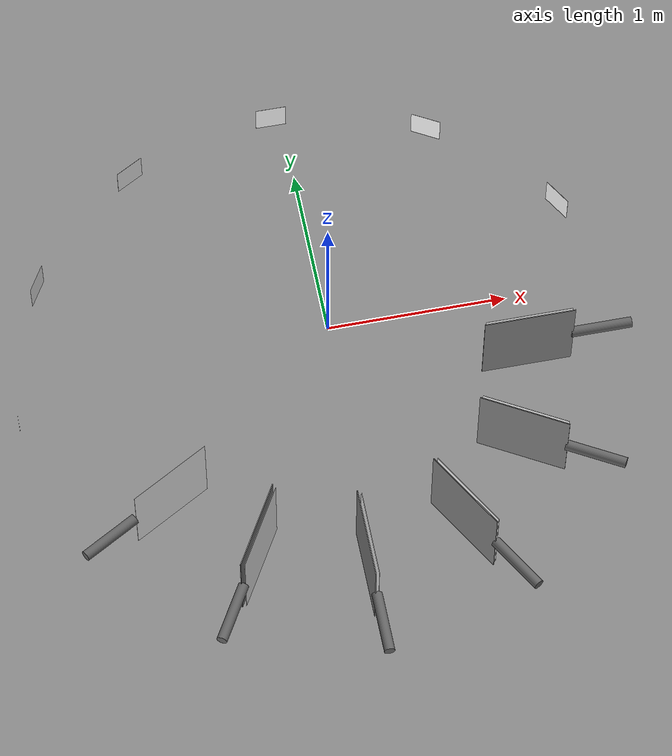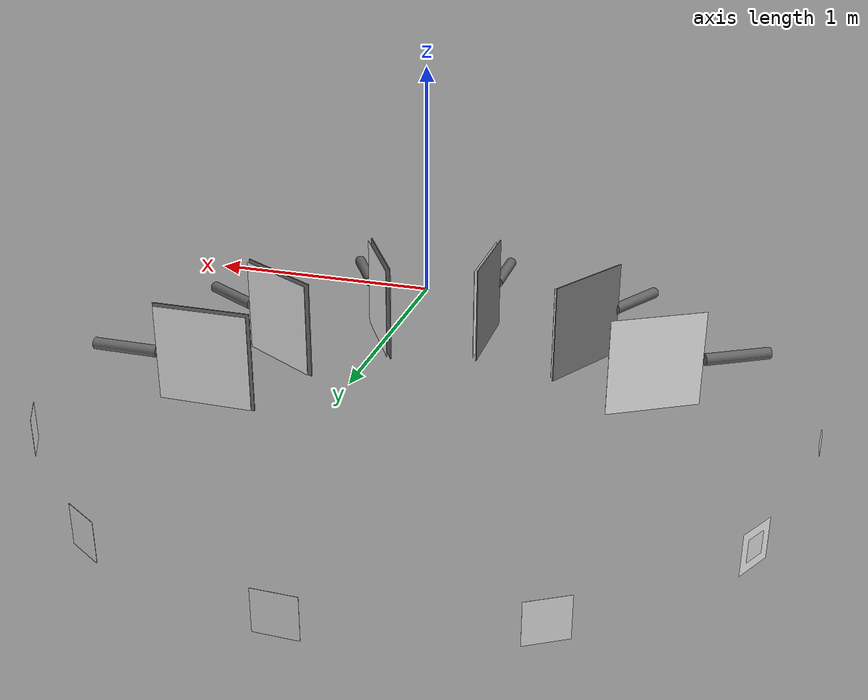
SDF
<?xml version="1.0"?>

<sdf version="1.6">
  <world name="default">

    <include>
      <uri>model://sun</uri>
    </include>

    <model name="marker0">
      <include>
        <static>true</static>
        <uri>model://marker_0</uri>
      </include>
      <pose>1.755 0.0 -0.5 0 -1.5707963267948966 0</pose>
    </model>
    <model name="marker1">
      <include>
        <static>true</static>
        <uri>model://marker_1</uri>
      </include>
      <pose>1.5198745836416898 -0.8774999999999998 -0.5 -0.5235987755982988 -1.5707963267948966 0</pose>
    </model>
    <model name="marker2">
      <include>
        <static>true</static>
        <uri>model://marker_2</uri>
      </include>
      <pose>0.8775000000000002 -1.5198745836416896 -0.5 -1.0471975511965976 -1.5707963267948966 0</pose>
    </model>
    <model name="marker3">
      <include>
        <static>true</static>
        <uri>model://marker_3</uri>
      </include>
      <pose>1.0746275662518023e-16 -1.755 -0.5 -1.5707963267948966 -1.5707963267948966 0</pose>
    </model>
    <model name="marker4">
      <include>
        <static>true</static>
        <uri>model://marker_4</uri>
      </include>
      <pose>-0.8774999999999995 -1.5198745836416898 -0.5 -2.0943951023931953 -1.5707963267948966 0</pose>
    </model>
    <model name="marker5">
      <include>
        <static>true</static>
        <uri>model://marker_5</uri>
      </include>
      <pose>-1.5198745836416894 -0.8775000000000005 -0.5 -2.617993877991494 -1.5707963267948966 0</pose>
    </model>
    <model name="marker6">
      <include>
        <static>true</static>
        <uri>model://marker_6</uri>
      </include>
      <pose>-1.755 -9.943020765372203e-16 -0.5 -3.1415926535897927 -1.5707963267948966 0</pose>
    </model>
    <model name="marker7">
      <include>
        <static>true</static>
        <uri>model://marker_7</uri>
      </include>
      <pose>-1.5198745836416905 0.8774999999999988 -0.5 -3.6651914291880914 -1.5707963267948966 0</pose>
    </model>
    <model name="marker8">
      <include>
        <static>true</static>
        <uri>model://marker_8</uri>
      </include>
      <pose>-0.8775000000000007 1.5198745836416891 -0.5 -4.1887902047863905 -1.5707963267948966 0</pose>
    </model>
    <model name="marker9">
      <include>
        <static>true</static>
        <uri>model://marker_9</uri>
      </include>
      <pose>-3.223882698755407e-16 1.755 -0.5 -4.71238898038469 -1.5707963267948966 0</pose>
    </model>
    <model name="marker10">
      <include>
        <static>true</static>
        <uri>model://marker_10</uri>
      </include>
      <pose>0.8775000000000002 1.5198745836416896 -0.5 -5.235987755982989 -1.5707963267948966 0</pose>
    </model>
    <model name="marker11">
      <include>
        <static>true</static>
        <uri>model://marker_11</uri>
      </include>
      <pose>1.51987458364169 0.8774999999999994 -0.5 -5.759586531581288 -1.5707963267948966 0</pose>
    </model>
  </world>
</sdf>

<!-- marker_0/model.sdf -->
<sdf version="1.6">
  <model name="aruco_marker_0">
    <static>true</static>
    <link name="link">
      <!-- Support pole: top reaches the panel's lower edge (0.35 m), no overlap -->
      <visual name="pole">
        <pose>0 0 0.175 0 0 0</pose>
        <geometry><cylinder><radius>0.03</radius><length>0.35</length></cylinder></geometry>
        <material>
          <ambient>0.3 0.3 0.3 1</ambient>
          <diffuse>0.4 0.4 0.4 1</diffuse>
          <specular>0.1 0.1 0.1 1</specular>
        </material>
      </visual>
      <collision name="pole_col">
        <pose>0 0 0.175 0 0 0</pose>
        <geometry><cylinder><radius>0.03</radius><length>0.35</length></cylinder></geometry>
      </collision>
      <!-- Marker panel 0.50 m, center 0.6 m high; lower edge at 0.35 m -->
      <!-- Local +Y face carries the texture; world yaw aims it inward. -->
      <visual name="marker">
        <pose>0 0.011 0.6 1.5708 0 0</pose>
        <geometry><box><size>0.50 0.50 0.002</size></box></geometry>
        <material>
          <ambient>1.0 1.0 1.0 1</ambient>
          <diffuse>1.0 1.0 1.0 1</diffuse>
          <specular>0.0 0.0 0.0 1</specular>
          <pbr>
            <metal>
              <albedo_map>model://aruco/marker_0/materials/textures/marker_0.png</albedo_map>
              <metalness>0.0</metalness>
              <roughness>1.0</roughness>
            </metal>
          </pbr>
        </material>
      </visual>
      <collision name="marker_col">
        <pose>0 0 0.6 0 0 0</pose>
        <geometry><box><size>0.50 0.04 0.52</size></box></geometry>
      </collision>
      <!-- Opaque gray backing on the local -Y side: occludes the texture from
           behind so a camera facing the back cannot detect a mirrored (flipped) marker. -->
      <visual name="back_panel">
        <pose>0 -0.01 0.6 1.5708 0 0</pose>
        <geometry><box><size>0.52 0.52 0.005</size></box></geometry>
        <material>
          <ambient>0.5 0.5 0.5 1</ambient>
          <diffuse>0.5 0.5 0.5 1</diffuse>
          <specular>0.1 0.1 0.1 1</specular>
        </material>
      </visual>
    </link>
  </model>
</sdf>

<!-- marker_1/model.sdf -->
<sdf version="1.6">
  <model name="aruco_marker_1">
    <static>true</static>
    <link name="link">
      <!-- Support pole: top reaches the panel's lower edge (0.35 m), no overlap -->
      <visual name="pole">
        <pose>0 0 0.175 0 0 0</pose>
        <geometry><cylinder><radius>0.03</radius><length>0.35</length></cylinder></geometry>
        <material>
          <ambient>0.3 0.3 0.3 1</ambient>
          <diffuse>0.4 0.4 0.4 1</diffuse>
          <specular>0.1 0.1 0.1 1</specular>
        </material>
      </visual>
      <collision name="pole_col">
        <pose>0 0 0.175 0 0 0</pose>
        <geometry><cylinder><radius>0.03</radius><length>0.35</length></cylinder></geometry>
      </collision>
      <!-- Marker panel 0.50 m, center 0.6 m high; lower edge at 0.35 m -->
      <!-- Local +Y face carries the texture; world yaw aims it inward. -->
      <visual name="marker">
        <pose>0 0.011 0.6 1.5708 0 0</pose>
        <geometry><box><size>0.50 0.50 0.002</size></box></geometry>
        <material>
          <ambient>1.0 1.0 1.0 1</ambient>
          <diffuse>1.0 1.0 1.0 1</diffuse>
          <specular>0.0 0.0 0.0 1</specular>
          <pbr>
            <metal>
              <albedo_map>model://aruco/marker_1/materials/textures/marker_1.png</albedo_map>
              <metalness>0.0</metalness>
              <roughness>1.0</roughness>
            </metal>
          </pbr>
        </material>
      </visual>
      <collision name="marker_col">
        <pose>0 0 0.6 0 0 0</pose>
        <geometry><box><size>0.50 0.04 0.52</size></box></geometry>
      </collision>
      <!-- Opaque gray backing on the local -Y side: occludes the texture from
           behind so a camera facing the back cannot detect a mirrored (flipped) marker. -->
      <visual name="back_panel">
        <pose>0 -0.01 0.6 1.5708 0 0</pose>
        <geometry><box><size>0.52 0.52 0.005</size></box></geometry>
        <material>
          <ambient>0.5 0.5 0.5 1</ambient>
          <diffuse>0.5 0.5 0.5 1</diffuse>
          <specular>0.1 0.1 0.1 1</specular>
        </material>
      </visual>
    </link>
  </model>
</sdf>

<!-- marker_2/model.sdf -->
<sdf version="1.6">
  <model name="aruco_marker_2">
    <static>true</static>
    <link name="link">
      <!-- Support pole: top reaches the panel's lower edge (0.35 m), no overlap -->
      <visual name="pole">
        <pose>0 0 0.175 0 0 0</pose>
        <geometry><cylinder><radius>0.03</radius><length>0.35</length></cylinder></geometry>
        <material>
          <ambient>0.3 0.3 0.3 1</ambient>
          <diffuse>0.4 0.4 0.4 1</diffuse>
          <specular>0.1 0.1 0.1 1</specular>
        </material>
      </visual>
      <collision name="pole_col">
        <pose>0 0 0.175 0 0 0</pose>
        <geometry><cylinder><radius>0.03</radius><length>0.35</length></cylinder></geometry>
      </collision>
      <!-- Marker panel 0.50 m, center 0.6 m high; lower edge at 0.35 m -->
      <!-- Local +Y face carries the texture; world yaw aims it inward. -->
      <visual name="marker">
        <pose>0 0.011 0.6 1.5708 0 0</pose>
        <geometry><box><size>0.50 0.50 0.002</size></box></geometry>
        <material>
          <ambient>1.0 1.0 1.0 1</ambient>
          <diffuse>1.0 1.0 1.0 1</diffuse>
          <specular>0.0 0.0 0.0 1</specular>
          <pbr>
            <metal>
              <albedo_map>model://aruco/marker_2/materials/textures/marker_2.png</albedo_map>
              <metalness>0.0</metalness>
              <roughness>1.0</roughness>
            </metal>
          </pbr>
        </material>
      </visual>
      <collision name="marker_col">
        <pose>0 0 0.6 0 0 0</pose>
        <geometry><box><size>0.50 0.04 0.52</size></box></geometry>
      </collision>
      <!-- Opaque gray backing on the local -Y side: occludes the texture from
           behind so a camera facing the back cannot detect a mirrored (flipped) marker. -->
      <visual name="back_panel">
        <pose>0 -0.01 0.6 1.5708 0 0</pose>
        <geometry><box><size>0.52 0.52 0.005</size></box></geometry>
        <material>
          <ambient>0.5 0.5 0.5 1</ambient>
          <diffuse>0.5 0.5 0.5 1</diffuse>
          <specular>0.1 0.1 0.1 1</specular>
        </material>
      </visual>
    </link>
  </model>
</sdf>

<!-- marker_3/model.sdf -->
<sdf version="1.6">
  <model name="aruco_marker_3">
    <static>true</static>
    <link name="link">
      <!-- Support pole: top reaches the panel's lower edge (0.35 m), no overlap -->
      <visual name="pole">
        <pose>0 0 0.175 0 0 0</pose>
        <geometry><cylinder><radius>0.03</radius><length>0.35</length></cylinder></geometry>
        <material>
          <ambient>0.3 0.3 0.3 1</ambient>
          <diffuse>0.4 0.4 0.4 1</diffuse>
          <specular>0.1 0.1 0.1 1</specular>
        </material>
      </visual>
      <collision name="pole_col">
        <pose>0 0 0.175 0 0 0</pose>
        <geometry><cylinder><radius>0.03</radius><length>0.35</length></cylinder></geometry>
      </collision>
      <!-- Marker panel 0.50 m, center 0.6 m high; lower edge at 0.35 m -->
      <!-- Local +Y face carries the texture; world yaw aims it inward. -->
      <visual name="marker">
        <pose>0 0.011 0.6 1.5708 0 0</pose>
        <geometry><box><size>0.50 0.50 0.002</size></box></geometry>
        <material>
          <ambient>1.0 1.0 1.0 1</ambient>
          <diffuse>1.0 1.0 1.0 1</diffuse>
          <specular>0.0 0.0 0.0 1</specular>
          <pbr>
            <metal>
              <albedo_map>model://aruco/marker_3/materials/textures/marker_3.png</albedo_map>
              <metalness>0.0</metalness>
              <roughness>1.0</roughness>
            </metal>
          </pbr>
        </material>
      </visual>
      <collision name="marker_col">
        <pose>0 0 0.6 0 0 0</pose>
        <geometry><box><size>0.50 0.04 0.52</size></box></geometry>
      </collision>
      <!-- Opaque gray backing on the local -Y side: occludes the texture from
           behind so a camera facing the back cannot detect a mirrored (flipped) marker. -->
      <visual name="back_panel">
        <pose>0 -0.01 0.6 1.5708 0 0</pose>
        <geometry><box><size>0.52 0.52 0.005</size></box></geometry>
        <material>
          <ambient>0.5 0.5 0.5 1</ambient>
          <diffuse>0.5 0.5 0.5 1</diffuse>
          <specular>0.1 0.1 0.1 1</specular>
        </material>
      </visual>
    </link>
  </model>
</sdf>

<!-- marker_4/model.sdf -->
<sdf version="1.6">
  <model name="aruco_marker_4">
    <static>true</static>
    <link name="link">
      <!-- Support pole: top reaches the panel's lower edge (0.35 m), no overlap -->
      <visual name="pole">
        <pose>0 0 0.175 0 0 0</pose>
        <geometry><cylinder><radius>0.03</radius><length>0.35</length></cylinder></geometry>
        <material>
          <ambient>0.3 0.3 0.3 1</ambient>
          <diffuse>0.4 0.4 0.4 1</diffuse>
          <specular>0.1 0.1 0.1 1</specular>
        </material>
      </visual>
      <collision name="pole_col">
        <pose>0 0 0.175 0 0 0</pose>
        <geometry><cylinder><radius>0.03</radius><length>0.35</length></cylinder></geometry>
      </collision>
      <!-- Marker panel 0.50 m, center 0.6 m high; lower edge at 0.35 m -->
      <!-- Local +Y face carries the texture; world yaw aims it inward. -->
      <visual name="marker">
        <pose>0 0.011 0.6 1.5708 0 0</pose>
        <geometry><box><size>0.50 0.50 0.002</size></box></geometry>
        <material>
          <ambient>1.0 1.0 1.0 1</ambient>
          <diffuse>1.0 1.0 1.0 1</diffuse>
          <specular>0.0 0.0 0.0 1</specular>
          <pbr>
            <metal>
              <albedo_map>model://aruco/marker_4/materials/textures/marker_4.png</albedo_map>
              <metalness>0.0</metalness>
              <roughness>1.0</roughness>
            </metal>
          </pbr>
        </material>
      </visual>
      <collision name="marker_col">
        <pose>0 0 0.6 0 0 0</pose>
        <geometry><box><size>0.50 0.04 0.52</size></box></geometry>
      </collision>
      <!-- Opaque gray backing on the local -Y side: occludes the texture from
           behind so a camera facing the back cannot detect a mirrored (flipped) marker. -->
      <visual name="back_panel">
        <pose>0 -0.01 0.6 1.5708 0 0</pose>
        <geometry><box><size>0.52 0.52 0.005</size></box></geometry>
        <material>
          <ambient>0.5 0.5 0.5 1</ambient>
          <diffuse>0.5 0.5 0.5 1</diffuse>
          <specular>0.1 0.1 0.1 1</specular>
        </material>
      </visual>
    </link>
  </model>
</sdf>

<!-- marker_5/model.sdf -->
<sdf version="1.6">
  <model name="aruco_marker_5">
    <static>true</static>
    <link name="link">
      <!-- Support pole: top reaches the panel's lower edge (0.35 m), no overlap -->
      <visual name="pole">
        <pose>0 0 0.175 0 0 0</pose>
        <geometry><cylinder><radius>0.03</radius><length>0.35</length></cylinder></geometry>
        <material>
          <ambient>0.3 0.3 0.3 1</ambient>
          <diffuse>0.4 0.4 0.4 1</diffuse>
          <specular>0.1 0.1 0.1 1</specular>
        </material>
      </visual>
      <collision name="pole_col">
        <pose>0 0 0.175 0 0 0</pose>
        <geometry><cylinder><radius>0.03</radius><length>0.35</length></cylinder></geometry>
      </collision>
      <!-- Marker panel 0.50 m, center 0.6 m high; lower edge at 0.35 m -->
      <!-- Local +Y face carries the texture; world yaw aims it inward. -->
      <visual name="marker">
        <pose>0 0.011 0.6 1.5708 0 0</pose>
        <geometry><box><size>0.50 0.50 0.002</size></box></geometry>
        <material>
          <ambient>1.0 1.0 1.0 1</ambient>
          <diffuse>1.0 1.0 1.0 1</diffuse>
          <specular>0.0 0.0 0.0 1</specular>
          <pbr>
            <metal>
              <albedo_map>model://aruco/marker_5/materials/textures/marker_5.png</albedo_map>
              <metalness>0.0</metalness>
              <roughness>1.0</roughness>
            </metal>
          </pbr>
        </material>
      </visual>
      <collision name="marker_col">
        <pose>0 0 0.6 0 0 0</pose>
        <geometry><box><size>0.50 0.04 0.52</size></box></geometry>
      </collision>
    </link>
  </model>
</sdf>

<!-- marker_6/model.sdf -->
<sdf version="1.6">
    <model name="marker_6">
         <link name='marker'>
            <pose frame=''>0 0 0 0 0 0</pose>
            <visual name='visual'>
                <geometry>
                    <box>
                        <size>0.1 0.1 1e-5</size>
                    </box>
                </geometry>
                <material>
                    <script>
                        <uri>model://marker_6/materials/scripts</uri>
                        <uri>model://marker_6/materials/textures</uri>
                        <name>marker_material6</name>
                    </script>
                    <ambient>1 1 1 1</ambient>
                    <diffuse>1 1 1 1</diffuse>
                    <specular>0 0 0 1</specular>
                    <emissive>1 1 1 0</emissive>
                </material>
                <pose frame=''>0 0 0 0 -0 0</pose>
                <cast_shadows>1</cast_shadows>
                <transparency>0</transparency>
            </visual>
            <collision name='collision'>
                <laser_retro>0</laser_retro>
                <max_contacts>10</max_contacts>
                <pose frame=''>0 0 0 0 -0 0</pose>
                <geometry>
                    <box>
                        <size>0.1 0.1 1e-05</size>
                    </box>
                </geometry>
            </collision>
        </link>

        <link name='marker_pad'>
            <pose frame='marker'>0 0 -1e-5 0 -0 0</pose>
            <visual name='visual'>
                <geometry>
                    <box>
                        <size>0.1 0.1 1e-5</size>
                    </box>
                </geometry>
                <material>
                    <lighting>1</lighting>
                    <script>
                        <uri>file://media/materials/scripts/gazebo.material</uri>
                        <name>Gazebo/White</name>
                    </script>
                    <ambient>0.3 0.3 0.3 1</ambient>
                    <diffuse>0.7 0.7 0.7 1</diffuse>
                    <specular>0.01 0.01 0.01 1</specular>
                    <emissive>1 1 1 0</emissive>
                </material>
                <cast_shadows>1</cast_shadows>
                <transparency>0</transparency>
            </visual>
            <collision name='collision'>
                <laser_retro>0</laser_retro>
                <max_contacts>10</max_contacts>
                <pose frame=''>0 0 0 0 -0 0</pose>
                <geometry>
                    <box>
                        <size>0.1 0.1 1e-5</size>
                    </box>
                </geometry>
            </collision>
        </link>

        <joint name='marker_JOINT_marker_pad' type='revolute'>
            <parent>marker</parent>
            <child>marker_pad</child>
            <pose frame=''>0 0 0 0 -0 0</pose>
            <axis>
                <xyz>0 0 1</xyz>
                <limit>
                    <upper>0</upper>
                    <lower>0</lower>
                </limit>
            </axis>
        </joint>

        <static>1</static>
        <allow_auto_disable>1</allow_auto_disable>

    </model>
</sdf>

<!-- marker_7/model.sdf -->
<sdf version="1.6">
        <model name="marker_7">
            <link name='marker'>
                <pose frame=''>0 0 0 0 0 0</pose>
                <visual name='visual'>
                    <geometry>
                        <box>
                            <size>0.1778 0.1778 1e-5</size>
                        </box>
                    </geometry>
                    <material>
                        <script>
                            <uri>model://marker_7/materials/scripts</uri>
                            <uri>model://marker_7/materials/textures</uri>
                            <name>ArucoVisualMarker7/Marker</name>
                        </script>
                        <ambient>1 1 1 1</ambient>
                        <diffuse>1 1 1 1</diffuse>
                        <specular>0 0 0 1</specular>
                        <emissive>1 1 1 0</emissive>
                        <shader type='vertex'>
                            <normal_map>__default__</normal_map>
                        </shader>
                    </material>
                    <pose frame=''>0 0 0 0 -0 0</pose>
                    <cast_shadows>1</cast_shadows>
                    <transparency>0</transparency>
                </visual>
                <collision name='collision'>
                    <laser_retro>0</laser_retro>
                    <max_contacts>10</max_contacts>
                    <pose frame=''>0 0 0 0 -0 0</pose>
                    <geometry>
                        <box>
                            <size>0.1 0.1 1e-05</size>
                        </box>
                    </geometry>
                </collision>
            </link>

            <link name='marker_pad'>
                <pose frame='marker'>0 0 -1e-5 0 -0 0</pose>
                <visual name='visual'>
                    <geometry>
                        <box>
                            <size>0.1 0.1 1e-5</size>
                        </box>
                    </geometry>
                    <material>
                        <lighting>1</lighting>
                        <script>
                            <uri>file://media/materials/scripts/gazebo.material</uri>
                            <name>Gazebo/White</name>
                        </script>
                        <ambient>0.3 0.3 0.3 1</ambient>
                        <diffuse>0.7 0.7 0.7 1</diffuse>
                        <specular>0.01 0.01 0.01 1</specular>
                        <emissive>1 1 1 0</emissive>
                        <shader type='vertex'>
                            <normal_map>__default__</normal_map>
                        </shader>
                    </material>
                    <cast_shadows>1</cast_shadows>
                    <transparency>0</transparency>
                </visual>
                <collision name='collision'>
                    <laser_retro>0</laser_retro>
                    <max_contacts>10</max_contacts>
                    <pose frame=''>0 0 0 0 -0 0</pose>
                    <geometry>
                        <box>
                            <size>0.1 0.1 1e-5</size>
                        </box>
                    </geometry>
                </collision>
            </link>

            <joint name='marker_JOINT_marker_pad' type='revolute'>
                <parent>marker</parent>
                <child>marker_pad</child>
                <pose frame=''>0 0 0 0 -0 0</pose>
                <axis>
                    <xyz>0 0 1</xyz>
                    <limit>
                        <upper>0</upper>
                        <lower>0</lower>
                    </limit>
                </axis>
            </joint>

            <static>1</static>
            <allow_auto_disable>1</allow_auto_disable>

        </model>
    </sdf>

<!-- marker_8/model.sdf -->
<sdf version='1.5'>
  <model name='marker_8'>

    <link name='marker'>
      <pose frame=''>0 0 0 0 0 0</pose>
      <visual name='visual'>
        <geometry>
          <box>
            <size>0.1778 0.1778 1e-5</size>
          </box>
        </geometry>
        <material>
          <script>
            <uri>model://marker_8/materials/scripts</uri>
            <uri>model://marker_8/materials/textures</uri>
            <name>ArucoVisualMarker8/Marker</name>
          </script>
          <ambient>1 1 1 1</ambient>
          <diffuse>1 1 1 1</diffuse>
          <specular>0 0 0 1</specular>
          <emissive>1 1 1 0</emissive>
          <shader type='vertex'>
            <normal_map>__default__</normal_map>
          </shader>
        </material>
        <pose frame=''>0 0 0 0 0 0</pose>
        <cast_shadows>1</cast_shadows>
        <transparency>0</transparency>
      </visual>
      <collision name='collision'>
        <laser_retro>0</laser_retro>
        <max_contacts>10</max_contacts>
        <pose frame=''>0 0 0 0 0 0</pose>
        <geometry>
          <box>
            <size>0.1778 0.1778 1e-05</size>
          </box>
        </geometry>
      </collision>
    </link>

    <link name='marker_pad'>
      <pose frame='marker'>0 0 -1e-3 0 0 0</pose>
      <visual name='visual'>
        <geometry>
          <box>
            <size>0.1778 0.1778 1e-5</size>
          </box>
        </geometry>
        <material>
          <lighting>1</lighting>
          <script>
            <uri>file://media/materials/scripts/gazebo.material</uri>
            <name>Gazebo/White</name>
          </script>
          <ambient>0.3 0.3 0.3 1</ambient>
          <diffuse>0.7 0.7 0.7 1</diffuse>
          <specular>0.01 0.01 0.01 1</specular>
          <emissive>1 1 1 0</emissive>
          <shader type='vertex'>
            <normal_map>__default__</normal_map>
          </shader>
        </material>
        <cast_shadows>1</cast_shadows>
        <transparency>0</transparency>
      </visual>
      <collision name='collision'>
        <laser_retro>0</laser_retro>
        <max_contacts>10</max_contacts>
        <pose frame=''>0 0 0 0 0 0</pose>
        <geometry>
          <box>
            <size>0.1778 0.1778 1e-5</size>
          </box>
        </geometry>
      </collision>
    </link>

    <joint name='marker_JOINT_marker_pad' type='revolute'>
      <parent>marker</parent>
      <child>marker_pad</child>
      <pose frame=''>0 0 0 0 0 0</pose>
      <axis>
        <xyz>0 0 1</xyz>
        <limit>
          <upper>0</upper>
          <lower>0</lower>
        </limit>
      </axis>
    </joint>

    <static>1</static>
    <allow_auto_disable>1</allow_auto_disable>

  </model>
</sdf>

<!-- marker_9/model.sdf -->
<sdf version='1.5'>
  <model name='marker_9'>

    <link name='marker'>
      <pose frame=''>0 0 0 0 0 0</pose>
      <visual name='visual'>
        <geometry>
          <box>
            <size>0.1778 0.1778 1e-5</size>
          </box>
        </geometry>
        <material>
          <script>
            <uri>model://marker_9/materials/scripts</uri>
            <uri>model://marker_9/materials/textures</uri>
            <name>ArucoVisualMarker9/Marker</name>
          </script>
          <ambient>1 1 1 1</ambient>
          <diffuse>1 1 1 1</diffuse>
          <specular>0 0 0 1</specular>
          <emissive>1 1 1 0</emissive>
          <shader type='vertex'>
            <normal_map>__default__</normal_map>
          </shader>
        </material>
        <pose frame=''>0 0 0 0 0 0</pose>
        <cast_shadows>1</cast_shadows>
        <transparency>0</transparency>
      </visual>
      <collision name='collision'>
        <laser_retro>0</laser_retro>
        <max_contacts>10</max_contacts>
        <pose frame=''>0 0 0 0 0 0</pose>
        <geometry>
          <box>
            <size>0.1778 0.1778 1e-05</size>
          </box>
        </geometry>
      </collision>
    </link>

    <link name='marker_pad'>
      <pose frame='marker'>0 0 -1e-3 0 0 0</pose>
      <visual name='visual'>
        <geometry>
          <box>
            <size>0.1778 0.1778 1e-5</size>
          </box>
        </geometry>
        <material>
          <lighting>1</lighting>
          <script>
            <uri>file://media/materials/scripts/gazebo.material</uri>
            <name>Gazebo/White</name>
          </script>
          <ambient>0.3 0.3 0.3 1</ambient>
          <diffuse>0.7 0.7 0.7 1</diffuse>
          <specular>0.01 0.01 0.01 1</specular>
          <emissive>1 1 1 0</emissive>
          <shader type='vertex'>
            <normal_map>__default__</normal_map>
          </shader>
        </material>
        <cast_shadows>1</cast_shadows>
        <transparency>0</transparency>
      </visual>
      <collision name='collision'>
        <laser_retro>0</laser_retro>
        <max_contacts>10</max_contacts>
        <pose frame=''>0 0 0 0 0 0</pose>
        <geometry>
          <box>
            <size>0.1778 0.1778 1e-5</size>
          </box>
        </geometry>
      </collision>
    </link>

    <joint name='marker_JOINT_marker_pad' type='revolute'>
      <parent>marker</parent>
      <child>marker_pad</child>
      <pose frame=''>0 0 0 0 0 0</pose>
      <axis>
        <xyz>0 0 1</xyz>
        <limit>
          <upper>0</upper>
          <lower>0</lower>
        </limit>
      </axis>
    </joint>

    <static>1</static>
    <allow_auto_disable>1</allow_auto_disable>

  </model>
</sdf>

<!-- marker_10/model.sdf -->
<sdf version='1.5'>
  <model name='marker_10'>

    <link name='marker'>
      <pose frame=''>0 0 0 0 0 0</pose>
      <visual name='visual'>
        <geometry>
          <box>
            <size>0.1778 0.1778 1e-5</size>
          </box>
        </geometry>
        <material>
          <script>
            <uri>model://marker_10/materials/scripts</uri>
            <uri>model://marker_10/materials/textures</uri>
            <name>ArucoVisualMarker10/Marker</name>
          </script>
          <ambient>1 1 1 1</ambient>
          <diffuse>1 1 1 1</diffuse>
          <specular>0 0 0 1</specular>
          <emissive>1 1 1 0</emissive>
          <shader type='vertex'>
            <normal_map>__default__</normal_map>
          </shader>
        </material>
        <pose frame=''>0 0 0 0 0 0</pose>
        <cast_shadows>1</cast_shadows>
        <transparency>0</transparency>
      </visual>
      <collision name='collision'>
        <laser_retro>0</laser_retro>
        <max_contacts>10</max_contacts>
        <pose frame=''>0 0 0 0 0 0</pose>
        <geometry>
          <box>
            <size>0.1778 0.1778 1e-05</size>
          </box>
        </geometry>
      </collision>
    </link>

    <link name='marker_pad'>
      <pose frame='marker'>0 0 -1e-3 0 0 0</pose>
      <visual name='visual'>
        <geometry>
          <box>
            <size>0.1778 0.1778 1e-5</size>
          </box>
        </geometry>
        <material>
          <lighting>1</lighting>
          <script>
            <uri>file://media/materials/scripts/gazebo.material</uri>
            <name>Gazebo/White</name>
          </script>
          <ambient>0.3 0.3 0.3 1</ambient>
          <diffuse>0.7 0.7 0.7 1</diffuse>
          <specular>0.01 0.01 0.01 1</specular>
          <emissive>1 1 1 0</emissive>
          <shader type='vertex'>
            <normal_map>__default__</normal_map>
          </shader>
        </material>
        <cast_shadows>1</cast_shadows>
        <transparency>0</transparency>
      </visual>
      <collision name='collision'>
        <laser_retro>0</laser_retro>
        <max_contacts>10</max_contacts>
        <pose frame=''>0 0 0 0 0 0</pose>
        <geometry>
          <box>
            <size>0.1778 0.1778 1e-5</size>
          </box>
        </geometry>
      </collision>
    </link>

    <joint name='marker_JOINT_marker_pad' type='revolute'>
      <parent>marker</parent>
      <child>marker_pad</child>
      <pose frame=''>0 0 0 0 0 0</pose>
      <axis>
        <xyz>0 0 1</xyz>
        <limit>
          <upper>0</upper>
          <lower>0</lower>
        </limit>
      </axis>
    </joint>

    <static>1</static>
    <allow_auto_disable>1</allow_auto_disable>

  </model>
</sdf>

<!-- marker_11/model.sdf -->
<sdf version='1.5'>
  <model name='marker_11'>

    <link name='marker'>
      <pose frame=''>0 0 0 0 0 0</pose>
      <visual name='visual'>
        <geometry>
          <box>
            <size>0.1778 0.1778 1e-5</size>
          </box>
        </geometry>
        <material>
          <script>
            <uri>model://marker_11/materials/scripts</uri>
            <uri>model://marker_11/materials/textures</uri>
            <name>ArucoVisualMarker11/Marker</name>
          </script>
          <ambient>1 1 1 1</ambient>
          <diffuse>1 1 1 1</diffuse>
          <specular>0 0 0 1</specular>
          <emissive>1 1 1 0</emissive>
          <shader type='vertex'>
            <normal_map>__default__</normal_map>
          </shader>
        </material>
        <pose frame=''>0 0 0 0 0 0</pose>
        <cast_shadows>1</cast_shadows>
        <transparency>0</transparency>
      </visual>
      <collision name='collision'>
        <laser_retro>0</laser_retro>
        <max_contacts>10</max_contacts>
        <pose frame=''>0 0 0 0 0 0</pose>
        <geometry>
          <box>
            <size>0.1778 0.1778 1e-05</size>
          </box>
        </geometry>
      </collision>
    </link>

    <link name='marker_pad'>
      <pose frame='marker'>0 0 -1e-3 0 0 0</pose>
      <visual name='visual'>
        <geometry>
          <box>
            <size>0.1778 0.1778 1e-5</size>
          </box>
        </geometry>
        <material>
          <lighting>1</lighting>
          <script>
            <uri>file://media/materials/scripts/gazebo.material</uri>
            <name>Gazebo/White</name>
          </script>
          <ambient>0.3 0.3 0.3 1</ambient>
          <diffuse>0.7 0.7 0.7 1</diffuse>
          <specular>0.01 0.01 0.01 1</specular>
          <emissive>1 1 1 0</emissive>
          <shader type='vertex'>
            <normal_map>__default__</normal_map>
          </shader>
        </material>
        <cast_shadows>1</cast_shadows>
        <transparency>0</transparency>
      </visual>
      <collision name='collision'>
        <laser_retro>0</laser_retro>
        <max_contacts>10</max_contacts>
        <pose frame=''>0 0 0 0 0 0</pose>
        <geometry>
          <box>
            <size>0.1778 0.1778 1e-5</size>
          </box>
        </geometry>
      </collision>
    </link>

    <joint name='marker_JOINT_marker_pad' type='revolute'>
      <parent>marker</parent>
      <child>marker_pad</child>
      <pose frame=''>0 0 0 0 0 0</pose>
      <axis>
        <xyz>0 0 1</xyz>
        <limit>
          <upper>0</upper>
          <lower>0</lower>
        </limit>
      </axis>
    </joint>

    <static>1</static>
    <allow_auto_disable>1</allow_auto_disable>

  </model>
</sdf>
